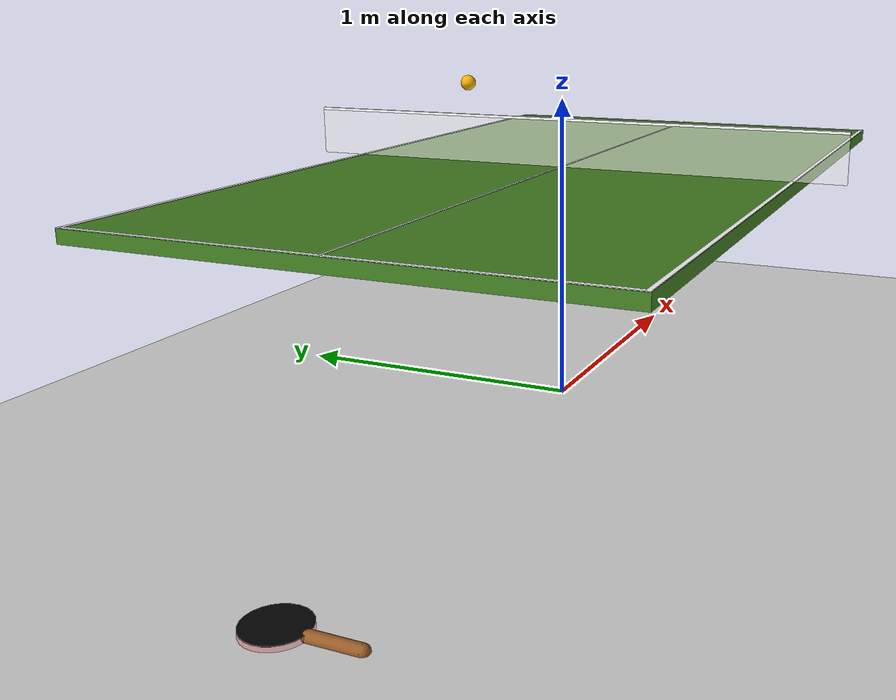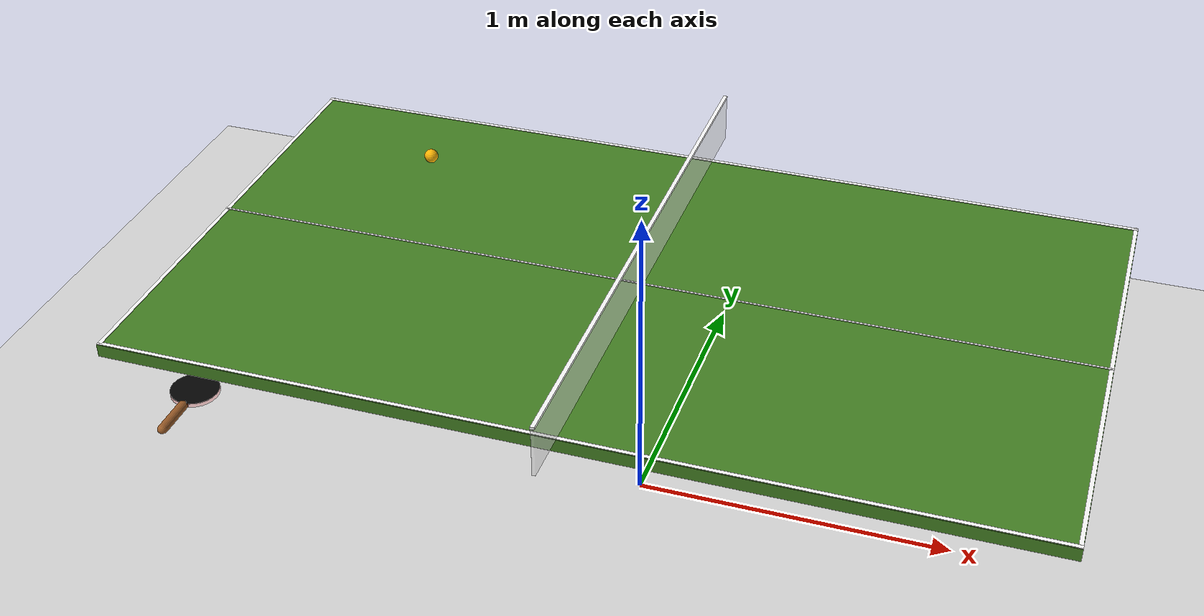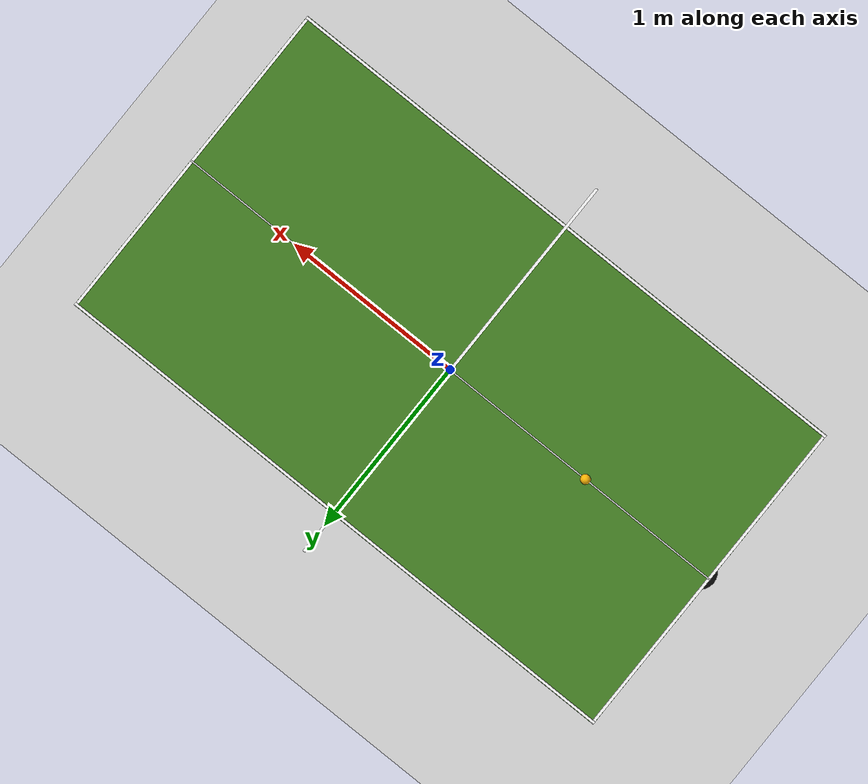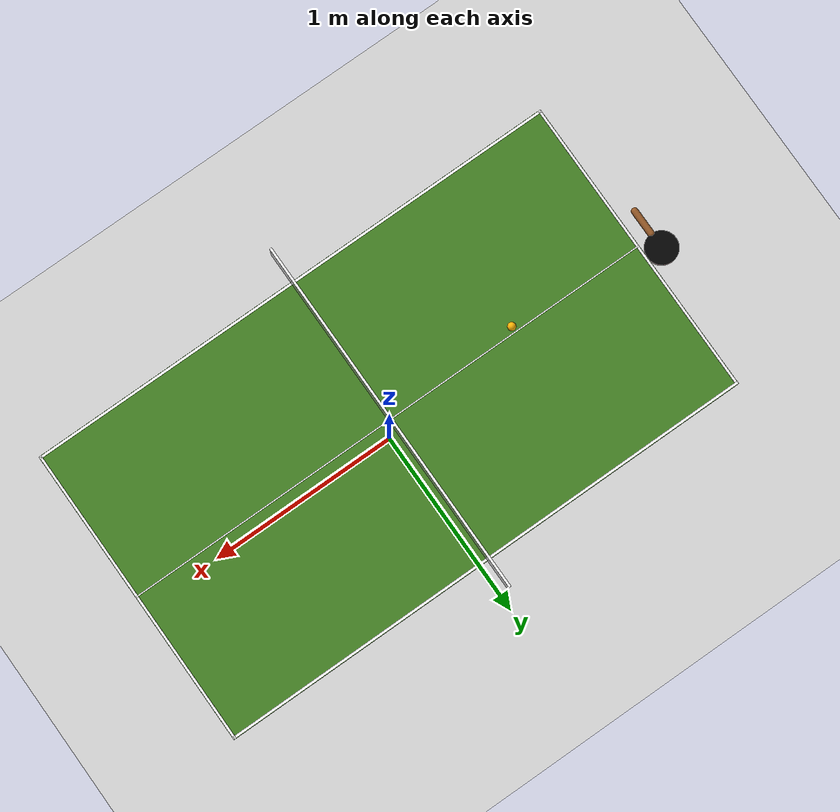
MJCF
<?xml version="1.0" encoding="utf-8"?>
<mujoco model="single_paddle_pingpong_rl">

  <compiler angle="radian" autolimits="true"/>

  <option density="1.225"
          viscosity="1.8e-5"
          wind="0 0 0"
          integrator="implicitfast"
          timestep="0.001"
          cone="elliptic"
          iterations="80"
          solver="Newton"/>

  <visual>
    <headlight diffuse="0.55 0.55 0.55" ambient="0.35 0.35 0.35" specular="0.3 0.3 0.3"/>
    <map znear="0.01" zfar="30"/>
  </visual>

  <asset>
    <texture type="skybox" builtin="gradient" rgb1="0.55 0.65 0.8" rgb2="0.05 0.05 0.07" width="256" height="256"/>
    <texture type="2d" name="groundplane" builtin="checker" mark="edge" rgb1="0.9 0.9 0.9" rgb2="0.8 0.8 0.8" markrgb="0 0 0" width="300" height="300"/>
    <material name="groundplane" texture="groundplane" texuniform="true" texrepeat="5 5" reflectance="0.25"/>
    <material name="table_green" rgba="0.27 0.51 0.14 1" reflectance="0.15"/>
    <material name="line_white" rgba="1 1 1 1"/>
    <material name="net_white" rgba="1 1 1 0.55"/>
    <material name="ball_orange" rgba="0.98 0.70 0.015 1" reflectance="0.25"/>
    <material name="paddle_red" rgba="0.85 0.03 0.02 1" reflectance="0.15"/>
    <material name="paddle_black" rgba="0.02 0.02 0.02 1" reflectance="0.15"/>
    <material name="paddle_wood" rgba="0.60 0.36 0.16 1" reflectance="0.08"/>
    <material name="paddle_collision_mat" rgba="1 0 0 0.22"/>
  </asset>

  <default>
    <default class="paddle_joint">
      <joint damping="1.0" armature="0.002" frictionloss="0.001"/>
    </default>
    <default class="paddle_motor">
      <motor ctrllimited="true" forcelimited="true" gear="1"/>
    </default>
  </default>

  <worldbody>
    <light name="main_light" pos="0 -2.5 4" dir="0 0 -1" diffuse="1 1 1" specular="0.5 0.5 0.5"/>
    <geom name="floor" type="plane" pos="0 0 0" size="5 5 0.1" material="groundplane" contype="0" conaffinity="0"/>

    <!-- Real table-tennis table: full size 2.74 m x 1.525 m. Table surface height = 0.76 m. -->
    <body name="table" pos="0 0 0">
      <geom name="geom_table" type="box" pos="0 0 0.76" size="1.37 0.7625 0.02" material="table_green"/>

      <!-- visual table lines; no collision -->
      <geom name="line_left" type="box" pos="0 0.755 0.781" size="1.37 0.006 0.001" material="line_white" contype="0" conaffinity="0"/>
      <geom name="line_right" type="box" pos="0 -0.755 0.781" size="1.37 0.006 0.001" material="line_white" contype="0" conaffinity="0"/>
      <geom name="line_near" type="box" pos="1.363 0 0.781" size="0.006 0.7625 0.001" material="line_white" contype="0" conaffinity="0"/>
      <geom name="line_far" type="box" pos="-1.363 0 0.781" size="0.006 0.7625 0.001" material="line_white" contype="0" conaffinity="0"/>
      <geom name="line_center" type="box" pos="0 0 0.782" size="1.37 0.003 0.001" material="line_white" contype="0" conaffinity="0"/>

      <!-- simple net at x=0 -->
      <geom name="geom_net" type="box" pos="0 0 0.85625" size="0.005 0.915 0.07625" material="net_white"/>
      <geom name="net_band" type="box" pos="0 0 0.934" size="0.006 0.915 0.004" material="line_white" contype="0" conaffinity="0"/>
    </body>

    <!-- Ball starts above receiver side. Reset code should overwrite qpos/qvel from serves/rallies. -->
    <body name="ball" pos="-0.65 0.0 1.10">
      <freejoint name="ball_freejoint"/>
      <inertial pos="0 0 0" mass="2.7e-3" diaginertia="7.2e-7 7.2e-7 7.2e-7"/>
      <geom name="geom_ball"
            type="sphere"
            size="0.02"
            shellinertia="false"
            fluidcoef="0.235 0.25 0.0 1.0 1.0"
            fluidshape="ellipsoid"
            group="1"
            material="ball_orange"/>
      <site name="ball_site" pos="0 0 0" size="0.006" rgba="1 0 0 1"/>
    </body>

    <body name="paddle_x_slide" pos="-1.6 0 0" >

      <inertial pos="0 0 0" mass="0.001" diaginertia="1e-6 1e-6 1e-6"/>
      <joint name="paddle_x" type="slide" axis="1 0 0" class="paddle_joint"/>
      <body name="paddle_y_slide" pos="0 0 0">

      <inertial pos="0 0 0" mass="0.001" diaginertia="1e-6 1e-6 1e-6"/>
      <joint name="paddle_y" type="slide" axis="0 1 0" class="paddle_joint"/>
        <body name="paddle_z_slide" pos="0 0 0">

      <inertial pos="0 0 0" mass="0.001" diaginertia="1e-6 1e-6 1e-6"/>
      <joint name="paddle_z" type="slide" axis="0 0 1" class="paddle_joint"/>
          <body name="paddle_roll_body" pos="0 0 0">
          <inertial pos="0 0 0" mass="0.001" diaginertia="1e-6 1e-6 1e-6"/>
            <joint name="paddle_roll" type="hinge" axis="1 0 0"  class="paddle_joint"/>
            <body name="paddle_pitch_body" pos="0 0 0">
              <inertial pos="0 0 0" mass="0.001" diaginertia="1e-6 1e-6 1e-6"/>
              <joint name="paddle_pitch" type="hinge" axis="0 1 0" class="paddle_joint"/>
              <body name="paddle_yaw_body" pos="0 0 0">
                <inertial pos="0 0 0" mass="0.001" diaginertia="1e-6 1e-6 1e-6"/>
                <joint name="paddle_yaw" type="hinge" axis="0 0 1" class="paddle_joint"/>

                <!-- Paddle body frame. Its origin is the RL end-effector/paddle control point. -->
                <body name="paddle" pos="0 0 0" quat="0.7071068 0 0.7071068 0">
                  <site name="paddle_center_site" pos="0 0 0" size="0.012" rgba="0 1 0 1"/>
                  <site name="paddle_face_site" pos="0.008 0 0" size="0.006" rgba="0 0 1 1"/>

                  <!-- Paddle blade. Axis is local x after the quat above. Collision is slightly thick for robust fast-ball contact. -->
                  <geom name="paddle_collision"
                        type="cylinder"
                        pos="0 0 0"
                        quat="0.7071068 0 0.7071068 0"
                        size="0.085 0.010"
                        mass="0.08"
                        material="paddle_collision_mat"/>

                  <!-- Visual red/black rubber surfaces; no collision. -->
                  <geom name="paddle_red_face"
                        type="cylinder"
                        pos="0.011 0 0"
                        quat="0.7071068 0 0.7071068 0"
                        size="0.085 0.001"
                        material="paddle_red"
                        contype="0" conaffinity="0"/>
                  <geom name="paddle_black_face"
                        type="cylinder"
                        pos="-0.011 0 0"
                        quat="0.7071068 0 0.7071068 0"
                        size="0.085 0.001"
                        material="paddle_black"
                        contype="0" conaffinity="0"/>

                  <!-- Handle, mostly visual and low-priority collision. -->
                  <geom name="paddle_handle"
                        type="capsule"
                        fromto="0 -0.085 0 0 -0.22 0"
                        size="0.018"
                        mass="0.04"
                        material="paddle_wood"/>
                </body>
              </body>
            </body>
          </body>
        </body>
      </body>
    </body>

    <camera name="side_view" pos="3.0 -3.0 1.8" xyaxes="0.707 0.707 0 -0.29 0.29 0.912"/>
    <camera name="receiver_view" pos="-2.2 0 1.25" xyaxes="0 -1 0 0.2 0 0.98"/>
    <camera name="top_view" pos="0 0 4.2" xyaxes="1 0 0 0 1 0"/>
  </worldbody>

  <!-- Pair-specific contacts. This follows the uploaded table_tennis.xml style for ball-table. -->
  <contact>
    <pair geom1="geom_ball" geom2="geom_table"
          solref="-1000000 -17"
          friction="0.1 0.1 0.005 0.0001 0.0001"
          solimp="0.98 0.99 0.001 0.5 2"
          solreffriction="-0.0 -200.0"/>

    <!-- Paddle is softer than table to avoid huge impulses into the controllable body during RL. -->
    <pair geom1="geom_ball" geom2="paddle_collision"
          solref="-500000 -24"
          friction="0.7 0.7 0.012 0.0005 0.0005"
          solimp="0.96 0.995 0.001 0.5 2"
          solreffriction="-0.0 -180.0"/>
  </contact>

  <actuator>
    <!-- Position actuators for easy RL action mapping. Recommended action = target joint position residual/clipped target. -->
    <position name="paddle_x_pos" joint="paddle_x" kp="500" ctrlrange="-0.50 0.65" class="paddle_motor" forcerange="-250 250"/>
    <position name="paddle_y_pos" joint="paddle_y" kp="500" ctrlrange="-0.70 0.70" class="paddle_motor" forcerange="-250 250"/>
    <position name="paddle_z_pos" joint="paddle_z" kp="600" ctrlrange="0.78 1.55" class="paddle_motor" forcerange="-300 300"/>
    <position name="paddle_roll_pos" joint="paddle_roll" kp="80" ctrlrange="-3.15 3.15" class="paddle_motor" forcerange="-40 40"/>
    <position name="paddle_pitch_pos" joint="paddle_pitch" kp="80" ctrlrange="-3.15 3.15" class="paddle_motor" forcerange="-40 40"/>
    <position name="paddle_yaw_pos" joint="paddle_yaw" kp="80" ctrlrange="-3.15 3.15" class="paddle_motor" forcerange="-40 40"/>
  </actuator>

  <sensor>
    <framepos name="ball_pos" objtype="site" objname="ball_site"/>
    <framelinvel name="ball_linvel" objtype="site" objname="ball_site"/>
    <frameangvel name="ball_angvel" objtype="site" objname="ball_site"/>
    <framepos name="paddle_pos" objtype="site" objname="paddle_center_site"/>
    <framequat name="paddle_quat" objtype="site" objname="paddle_center_site"/>
    <framelinvel name="paddle_linvel" objtype="site" objname="paddle_center_site"/>
    <frameangvel name="paddle_angvel" objtype="site" objname="paddle_center_site"/>
    <jointpos name="paddle_qpos" joint="paddle_x"/>
    <jointpos name="paddle_y_qpos" joint="paddle_y"/>
    <jointpos name="paddle_z_qpos" joint="paddle_z"/>
    <jointpos name="paddle_roll_qpos" joint="paddle_roll"/>
    <jointpos name="paddle_pitch_qpos" joint="paddle_pitch"/>
    <jointpos name="paddle_yaw_qpos" joint="paddle_yaw"/>
  </sensor>

  <keyframe>
    <!-- qpos order: ball freejoint(7), then paddle_x/y/z/roll/pitch/yaw. -->
    <key name="serve_easy"
         qpos="-0.25 0.00 1.15 1 0 0 0  -0.95 0.00 1.05 0.00 0.00 0.00"
         qvel="-1.7 0.0 -0.8 0 0 0  0 0 0 0 0 0"/>
  </keyframe>
</mujoco>
